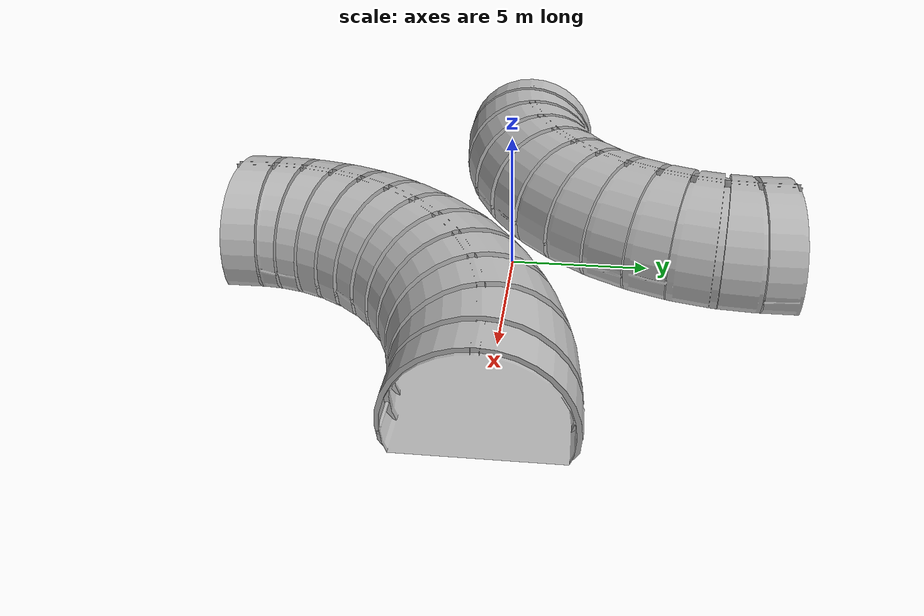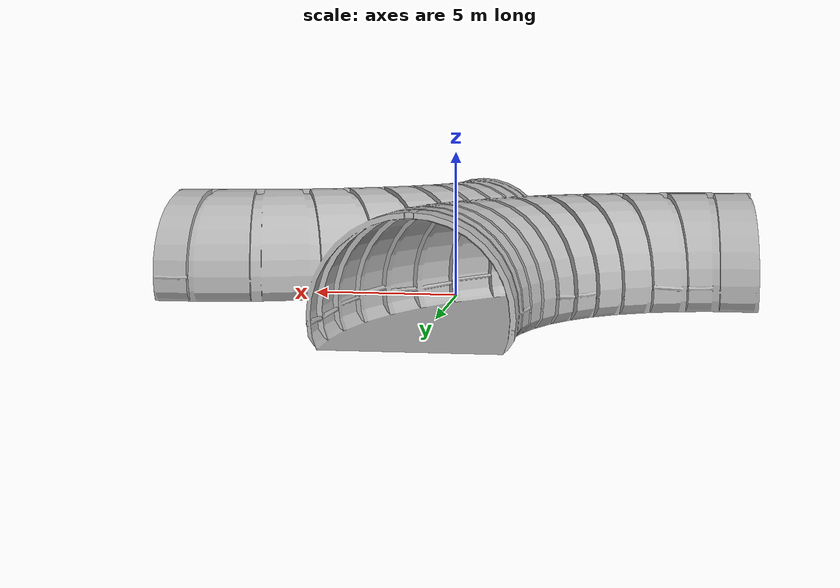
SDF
<?xml version="1.0"?>
<sdf version="1.6">
    <model name="tunnel_tile_3">
        <static>true</static>
        <link name="link">
            <collision name="collision">
                <geometry>
                    <mesh>
                        <uri>meshes/tunnel_tile_3.dae</uri>
                    </mesh>
                </geometry>
            </collision>
            <collision name="collision_ground">
                <geometry>
                    <box>
                        <size>20 20 0.001</size>
                    </box>
                </geometry>
            </collision>
            <visual name="visual">
                <geometry>
                    <mesh>
                        <uri>meshes/tunnel_tile_3.dae</uri>
                    </mesh>
                </geometry>
            </visual>
        </link>
    </model>
</sdf>
